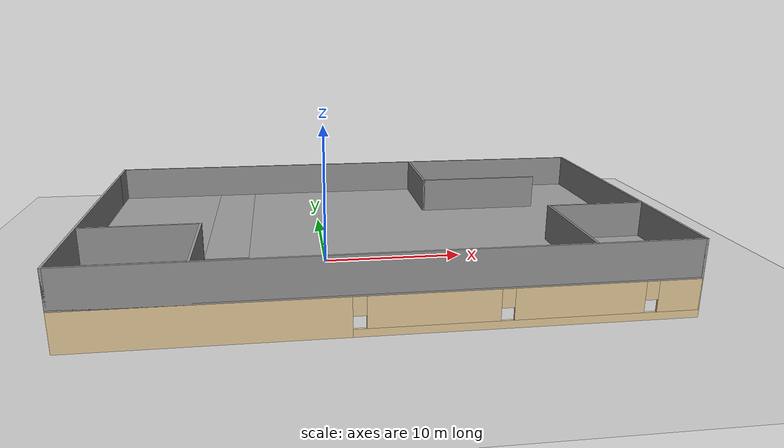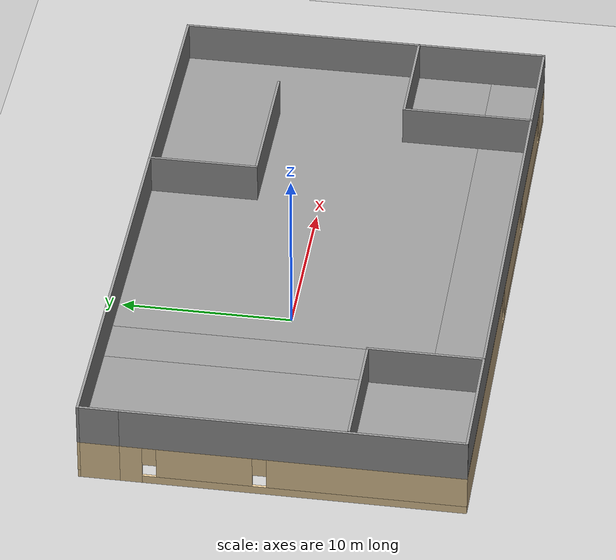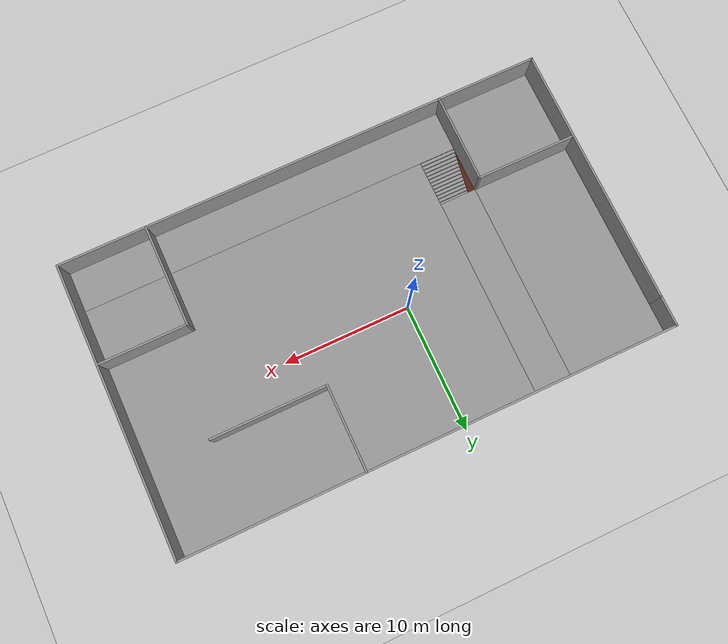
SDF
<sdf version="1.6">
 <world name="default">
  <model name="ground_plane">
   <static>1</static>
   <link name="link">
    <collision name="collision">
     <geometry><plane><normal>0 0 1</normal><size>100 100</size></plane></geometry>
     <surface><friction><ode><mu>100</mu><mu2>50</mu2></ode></friction></surface>
    </collision>
    <visual name="visual">
     <cast_shadows>0</cast_shadows>
     <geometry><plane><normal>0 0 1</normal><size>100 100</size></plane></geometry>
     <material>
      <script><uri>file://media/materials/scripts/gazebo.material</uri><name>Gazebo/Grey</name></script>
     </material>
    </visual>
   </link>
  </model>
  <model name="storage">
   <pose>2.94649 -1.27432 0 0 -0 0</pose>
   <link name="Floor_0">
    <pose>0 0 2.5 0 -0 0</pose>
    <visual name="Floor_0_Visual_0">
     <pose>-14.7944 0 0.05 0 -0 0</pose>
     <geometry><box><size>7.66113 22 0.1</size></box></geometry>
     <material>
      <script><uri>file://media/materials/scripts/gazebo.material</uri><name>Gazebo/Grey</name></script>
      <ambient>1 1 1 1</ambient>
     </material>
    </visual>
    <collision name="Floor_0_Collision_0">
     <geometry><box><size>7.66113 22 0.1</size></box></geometry>
     <pose>-14.7944 0 0.05 0 -0 0</pose>
    </collision>
    <visual name="Floor_0_Visual_1">
     <pose>3.83056 -9.39198 0.05 0 -0 0</pose>
     <geometry><box><size>29.5889 3.21604 0.1</size></box></geometry>
     <material>
      <script><uri>file://media/materials/scripts/gazebo.material</uri><name>Gazebo/Grey</name></script>
      <ambient>1 1 1 1</ambient>
     </material>
    </visual>
    <collision name="Floor_0_Collision_1">
     <geometry><box><size>29.5889 3.21604 0.1</size></box></geometry>
     <pose>3.83056 -9.39198 0.05 0 -0 0</pose>
    </collision>
    <visual name="Floor_0_Visual_2">
     <pose>5.22762 1.60802 0.05 0 -0 0</pose>
     <geometry><box><size>26.7948 18.784 0.1</size></box></geometry>
     <material>
      <script><uri>file://media/materials/scripts/gazebo.material</uri><name>Gazebo/Grey</name></script>
      <ambient>1 1 1 1</ambient>
     </material>
    </visual>
    <collision name="Floor_0_Collision_2">
     <geometry><box><size>26.7948 18.784 0.1</size></box></geometry>
     <pose>5.22762 1.60802 0.05 0 -0 0</pose>
    </collision>
    <visual name="Floor_0_Visual_3">
     <pose>-9.56682 3.35802 0.05 0 -0 0</pose>
     <geometry><box><size>2.79412 15.284 0.1</size></box></geometry>
     <material>
      <script><uri>file://media/materials/scripts/gazebo.material</uri><name>Gazebo/Grey</name></script>
      <ambient>1 1 1 1</ambient>
     </material>
    </visual>
    <collision name="Floor_0_Collision_3">
     <geometry><box><size>2.79412 15.284 0.1</size></box></geometry>
     <pose>-9.56682 3.35802 0.05 0 -0 0</pose>
    </collision>
   </link>
   <link name="Stairs_0">
    <visual name="Stairs_0_Visual_0">
     <pose>-9.56682 -4.40063 0.083333 0 -0 0</pose>
     <geometry><box><size>2.79412 0.233333 0.166667</size></box></geometry>
     <material>
      <script><uri>file://media/materials/scripts/gazebo.material</uri><name>Gazebo/Grey</name></script>
      <ambient>0.419608 0.419608 0.419608 1</ambient>
     </material>
    </visual>
    <collision name="Stairs_0_Collision_0">
     <geometry><box><size>2.79412 0.233333 0.166667</size></box></geometry>
     <pose>-9.56682 -4.40063 0.083333 0 -0 0</pose>
    </collision>
    <visual name="Stairs_0_Visual_1">
     <pose>-9.56682 -4.63396 0.25 0 -0 0</pose>
     <geometry><box><size>2.79412 0.233333 0.166667</size></box></geometry>
     <material>
      <script><uri>file://media/materials/scripts/gazebo.material</uri><name>Gazebo/Grey</name></script>
      <ambient>0.419608 0.419608 0.419608 1</ambient>
     </material>
    </visual>
    <collision name="Stairs_0_Collision_1">
     <geometry><box><size>2.79412 0.233333 0.166667</size></box></geometry>
     <pose>-9.56682 -4.63396 0.25 0 -0 0</pose>
    </collision>
    <visual name="Stairs_0_Visual_2">
     <pose>-9.56682 -4.86729 0.416667 0 -0 0</pose>
     <geometry><box><size>2.79412 0.233333 0.166667</size></box></geometry>
     <material>
      <script><uri>file://media/materials/scripts/gazebo.material</uri><name>Gazebo/Grey</name></script>
      <ambient>0.419608 0.419608 0.419608 1</ambient>
     </material>
    </visual>
    <collision name="Stairs_0_Collision_2">
     <geometry><box><size>2.79412 0.233333 0.166667</size></box></geometry>
     <pose>-9.56682 -4.86729 0.416667 0 -0 0</pose>
    </collision>
    <visual name="Stairs_0_Visual_3">
     <pose>-9.56682 -5.10063 0.583333 0 -0 0</pose>
     <geometry><box><size>2.79412 0.233333 0.166667</size></box></geometry>
     <material>
      <script><uri>file://media/materials/scripts/gazebo.material</uri><name>Gazebo/Grey</name></script>
      <ambient>0.419608 0.419608 0.419608 1</ambient>
     </material>
    </visual>
    <collision name="Stairs_0_Collision_3">
     <geometry><box><size>2.79412 0.233333 0.166667</size></box></geometry>
     <pose>-9.56682 -5.10063 0.583333 0 -0 0</pose>
    </collision>
    <visual name="Stairs_0_Visual_4">
     <pose>-9.56682 -5.33396 0.75 0 -0 0</pose>
     <geometry><box><size>2.79412 0.233333 0.166667</size></box></geometry>
     <material>
      <script><uri>file://media/materials/scripts/gazebo.material</uri><name>Gazebo/Grey</name></script>
      <ambient>0.419608 0.419608 0.419608 1</ambient>
     </material>
    </visual>
    <collision name="Stairs_0_Collision_4">
     <geometry><box><size>2.79412 0.233333 0.166667</size></box></geometry>
     <pose>-9.56682 -5.33396 0.75 0 -0 0</pose>
    </collision>
    <visual name="Stairs_0_Visual_5">
     <pose>-9.56682 -5.56729 0.916667 0 -0 0</pose>
     <geometry><box><size>2.79412 0.233333 0.166667</size></box></geometry>
     <material>
      <script><uri>file://media/materials/scripts/gazebo.material</uri><name>Gazebo/Grey</name></script>
      <ambient>0.419608 0.419608 0.419608 1</ambient>
     </material>
    </visual>
    <collision name="Stairs_0_Collision_5">
     <geometry><box><size>2.79412 0.233333 0.166667</size></box></geometry>
     <pose>-9.56682 -5.56729 0.916667 0 -0 0</pose>
    </collision>
    <visual name="Stairs_0_Visual_6">
     <pose>-9.56682 -5.80063 1.08333 0 -0 0</pose>
     <geometry><box><size>2.79412 0.233333 0.166667</size></box></geometry>
     <material>
      <script><uri>file://media/materials/scripts/gazebo.material</uri><name>Gazebo/Grey</name></script>
      <ambient>0.419608 0.419608 0.419608 1</ambient>
     </material>
    </visual>
    <collision name="Stairs_0_Collision_6">
     <geometry><box><size>2.79412 0.233333 0.166667</size></box></geometry>
     <pose>-9.56682 -5.80063 1.08333 0 -0 0</pose>
    </collision>
    <visual name="Stairs_0_Visual_7">
     <pose>-9.56682 -6.03396 1.25 0 -0 0</pose>
     <geometry><box><size>2.79412 0.233333 0.166667</size></box></geometry>
     <material>
      <script><uri>file://media/materials/scripts/gazebo.material</uri><name>Gazebo/Grey</name></script>
      <ambient>0.419608 0.419608 0.419608 1</ambient>
     </material>
    </visual>
    <collision name="Stairs_0_Collision_7">
     <geometry><box><size>2.79412 0.233333 0.166667</size></box></geometry>
     <pose>-9.56682 -6.03396 1.25 0 -0 0</pose>
    </collision>
    <visual name="Stairs_0_Visual_8">
     <pose>-9.56682 -6.26729 1.41667 0 -0 0</pose>
     <geometry><box><size>2.79412 0.233333 0.166667</size></box></geometry>
     <material>
      <script><uri>file://media/materials/scripts/gazebo.material</uri><name>Gazebo/Grey</name></script>
      <ambient>0.419608 0.419608 0.419608 1</ambient>
     </material>
    </visual>
    <collision name="Stairs_0_Collision_8">
     <geometry><box><size>2.79412 0.233333 0.166667</size></box></geometry>
     <pose>-9.56682 -6.26729 1.41667 0 -0 0</pose>
    </collision>
    <visual name="Stairs_0_Visual_9">
     <pose>-9.56682 -6.50063 1.58333 0 -0 0</pose>
     <geometry><box><size>2.79412 0.233333 0.166667</size></box></geometry>
     <material>
      <script><uri>file://media/materials/scripts/gazebo.material</uri><name>Gazebo/Grey</name></script>
      <ambient>0.419608 0.419608 0.419608 1</ambient>
     </material>
    </visual>
    <collision name="Stairs_0_Collision_9">
     <geometry><box><size>2.79412 0.233333 0.166667</size></box></geometry>
     <pose>-9.56682 -6.50063 1.58333 0 -0 0</pose>
    </collision>
    <visual name="Stairs_0_Visual_10">
     <pose>-9.56682 -6.73396 1.75 0 -0 0</pose>
     <geometry><box><size>2.79412 0.233333 0.166667</size></box></geometry>
     <material>
      <script><uri>file://media/materials/scripts/gazebo.material</uri><name>Gazebo/Grey</name></script>
      <ambient>0.419608 0.419608 0.419608 1</ambient>
     </material>
    </visual>
    <collision name="Stairs_0_Collision_10">
     <geometry><box><size>2.79412 0.233333 0.166667</size></box></geometry>
     <pose>-9.56682 -6.73396 1.75 0 -0 0</pose>
    </collision>
    <visual name="Stairs_0_Visual_11">
     <pose>-9.56682 -6.9673 1.91667 0 -0 0</pose>
     <geometry><box><size>2.79412 0.233333 0.166667</size></box></geometry>
     <material>
      <script><uri>file://media/materials/scripts/gazebo.material</uri><name>Gazebo/Grey</name></script>
      <ambient>0.419608 0.419608 0.419608 1</ambient>
     </material>
    </visual>
    <collision name="Stairs_0_Collision_11">
     <geometry><box><size>2.79412 0.233333 0.166667</size></box></geometry>
     <pose>-9.56682 -6.9673 1.91667 0 -0 0</pose>
    </collision>
    <visual name="Stairs_0_Visual_12">
     <pose>-9.56682 -7.20063 2.08333 0 -0 0</pose>
     <geometry><box><size>2.79412 0.233333 0.166667</size></box></geometry>
     <material>
      <script><uri>file://media/materials/scripts/gazebo.material</uri><name>Gazebo/Grey</name></script>
      <ambient>0.419608 0.419608 0.419608 1</ambient>
     </material>
    </visual>
    <collision name="Stairs_0_Collision_12">
     <geometry><box><size>2.79412 0.233333 0.166667</size></box></geometry>
     <pose>-9.56682 -7.20063 2.08333 0 -0 0</pose>
    </collision>
    <visual name="Stairs_0_Visual_13">
     <pose>-9.56682 -7.43396 2.25 0 -0 0</pose>
     <geometry><box><size>2.79412 0.233333 0.166667</size></box></geometry>
     <material>
      <script><uri>file://media/materials/scripts/gazebo.material</uri><name>Gazebo/Grey</name></script>
      <ambient>0.419608 0.419608 0.419608 1</ambient>
     </material>
    </visual>
    <collision name="Stairs_0_Collision_13">
     <geometry><box><size>2.79412 0.233333 0.166667</size></box></geometry>
     <pose>-9.56682 -7.43396 2.25 0 -0 0</pose>
    </collision>
    <visual name="Stairs_0_Visual_14">
     <pose>-9.56682 -7.6673 2.41667 0 -0 0</pose>
     <geometry><box><size>2.79412 0.233333 0.166667</size></box></geometry>
     <material>
      <script><uri>file://media/materials/scripts/gazebo.material</uri><name>Gazebo/Grey</name></script>
      <ambient>0.419608 0.419608 0.419608 1</ambient>
     </material>
    </visual>
    <collision name="Stairs_0_Collision_14">
     <geometry><box><size>2.79412 0.233333 0.166667</size></box></geometry>
     <pose>-9.56682 -7.6673 2.41667 0 -0 0</pose>
    </collision>
   </link>
   <link name="Wall_1">
    <pose>-18.55 -1.125 0 0 0 -1.5708</pose>
    <visual name="Wall_1_Visual_0">
     <pose>-9.16747 0 1.25 0 -0 0</pose>
     <geometry><box><size>1.41505 0.15 2.5</size></box></geometry>
     <material>
      <script><uri>file://media/materials/scripts/gazebo.material</uri><name>Gazebo/Grey</name></script>
      <ambient>0.921569 0.807843 0.615686 1</ambient>
     </material>
    </visual>
    <collision name="Wall_1_Collision_0">
     <geometry><box><size>1.41505 0.15 2.5</size></box></geometry>
     <pose>-9.16747 0 1.25 0 -0 0</pose>
    </collision>
    <visual name="Wall_1_Visual_1">
     <pose>0.707526 0 0.25 0 -0 0</pose>
     <geometry><box><size>18.3349 0.15 0.5</size></box></geometry>
     <material>
      <script><uri>file://media/materials/scripts/gazebo.material</uri><name>Gazebo/Grey</name></script>
      <ambient>0.921569 0.807843 0.615686 1</ambient>
     </material>
    </visual>
    <collision name="Wall_1_Collision_1">
     <geometry><box><size>18.3349 0.15 0.5</size></box></geometry>
     <pose>0.707526 0 0.25 0 -0 0</pose>
    </collision>
    <visual name="Wall_1_Visual_2">
     <pose>-4.94285 0 1.5 0 -0 0</pose>
     <geometry><box><size>5.43421 0.15 2</size></box></geometry>
     <material>
      <script><uri>file://media/materials/scripts/gazebo.material</uri><name>Gazebo/Grey</name></script>
      <ambient>0.921569 0.807843 0.615686 1</ambient>
     </material>
    </visual>
    <collision name="Wall_1_Collision_2">
     <geometry><box><size>5.43421 0.15 2</size></box></geometry>
     <pose>-4.94285 0 1.5 0 -0 0</pose>
    </collision>
    <visual name="Wall_1_Visual_3">
     <pose>4.22463 0 1.5 0 -0 0</pose>
     <geometry><box><size>11.3007 0.15 2</size></box></geometry>
     <material>
      <script><uri>file://media/materials/scripts/gazebo.material</uri><name>Gazebo/Grey</name></script>
      <ambient>0.921569 0.807843 0.615686 1</ambient>
     </material>
    </visual>
    <collision name="Wall_1_Collision_3">
     <geometry><box><size>11.3007 0.15 2</size></box></geometry>
     <pose>4.22463 0 1.5 0 -0 0</pose>
    </collision>
    <visual name="Wall_1_Visual_4">
     <pose>-8.05995 0 1.9 0 -0 0</pose>
     <geometry><box><size>0.8 0.15 1.2</size></box></geometry>
     <material>
      <script><uri>file://media/materials/scripts/gazebo.material</uri><name>Gazebo/Grey</name></script>
      <ambient>0.921569 0.807843 0.615686 1</ambient>
     </material>
    </visual>
    <collision name="Wall_1_Collision_4">
     <geometry><box><size>0.8 0.15 1.2</size></box></geometry>
     <pose>-8.05995 0 1.9 0 -0 0</pose>
    </collision>
    <visual name="Wall_1_Visual_5">
     <pose>-1.82574 0 1.9 0 -0 0</pose>
     <geometry><box><size>0.8 0.15 1.2</size></box></geometry>
     <material>
      <script><uri>file://media/materials/scripts/gazebo.material</uri><name>Gazebo/Grey</name></script>
      <ambient>0.921569 0.807843 0.615686 1</ambient>
     </material>
    </visual>
    <collision name="Wall_1_Collision_5">
     <geometry><box><size>0.8 0.15 1.2</size></box></geometry>
     <pose>-1.82574 0 1.9 0 -0 0</pose>
    </collision>
   </link>
   <link name="Wall_10">
    <pose>-11.0196 -7.61598 0 0 -0 1.5708</pose>
    <visual name="Wall_10_Visual_0">
     <pose>-2.69712 0 1.25 0 -0 0</pose>
     <geometry><box><size>1.35576 0.15 2.5</size></box></geometry>
     <material>
      <script><uri>file://media/materials/scripts/gazebo.material</uri><name>Gazebo/Bricks</name></script>
      <ambient>1 1 1 1</ambient>
     </material>
    </visual>
    <collision name="Wall_10_Collision_0">
     <geometry><box><size>1.35576 0.15 2.5</size></box></geometry>
     <pose>-2.69712 0 1.25 0 -0 0</pose>
    </collision>
    <visual name="Wall_10_Visual_1">
     <pose>0.677878 0 0.25 0 -0 0</pose>
     <geometry><box><size>5.39424 0.15 0.5</size></box></geometry>
     <material>
      <script><uri>file://media/materials/scripts/gazebo.material</uri><name>Gazebo/Bricks</name></script>
      <ambient>1 1 1 1</ambient>
     </material>
    </visual>
    <collision name="Wall_10_Collision_1">
     <geometry><box><size>5.39424 0.15 0.5</size></box></geometry>
     <pose>0.677878 0 0.25 0 -0 0</pose>
    </collision>
    <visual name="Wall_10_Visual_2">
     <pose>1.07788 0 1.5 0 -0 0</pose>
     <geometry><box><size>4.59424 0.15 2</size></box></geometry>
     <material>
      <script><uri>file://media/materials/scripts/gazebo.material</uri><name>Gazebo/Bricks</name></script>
      <ambient>1 1 1 1</ambient>
     </material>
    </visual>
    <collision name="Wall_10_Collision_2">
     <geometry><box><size>4.59424 0.15 2</size></box></geometry>
     <pose>1.07788 0 1.5 0 -0 0</pose>
    </collision>
    <visual name="Wall_10_Visual_3">
     <pose>-1.61925 0 1.9 0 -0 0</pose>
     <geometry><box><size>0.8 0.15 1.2</size></box></geometry>
     <material>
      <script><uri>file://media/materials/scripts/gazebo.material</uri><name>Gazebo/Bricks</name></script>
      <ambient>1 1 1 1</ambient>
     </material>
    </visual>
    <collision name="Wall_10_Collision_3">
     <geometry><box><size>0.8 0.15 1.2</size></box></geometry>
     <pose>-1.61925 0 1.9 0 -0 0</pose>
    </collision>
   </link>
   <link name="Wall_11">
    <pose>-14.6946 -4.31598 0 0 -0 3.14159</pose>
    <visual name="Wall_11_Visual_0">
     <pose>-2.69663 0 1.25 0 -0 0</pose>
     <geometry><box><size>2.10674 0.15 2.5</size></box></geometry>
     <material>
      <script><uri>file://media/materials/scripts/gazebo.material</uri><name>Gazebo/Bricks</name></script>
      <ambient>1 1 1 1</ambient>
     </material>
    </visual>
    <collision name="Wall_11_Collision_0">
     <geometry><box><size>2.10674 0.15 2.5</size></box></geometry>
     <pose>-2.69663 0 1.25 0 -0 0</pose>
    </collision>
    <visual name="Wall_11_Visual_1">
     <pose>0.21527 0 1.25 0 -0 0</pose>
     <geometry><box><size>1.91706 0.15 2.5</size></box></geometry>
     <material>
      <script><uri>file://media/materials/scripts/gazebo.material</uri><name>Gazebo/Bricks</name></script>
      <ambient>1 1 1 1</ambient>
     </material>
    </visual>
    <collision name="Wall_11_Collision_1">
     <geometry><box><size>1.91706 0.15 2.5</size></box></geometry>
     <pose>0.21527 0 1.25 0 -0 0</pose>
    </collision>
    <visual name="Wall_11_Visual_2">
     <pose>2.4619 0 0.25 0 -0 0</pose>
     <geometry><box><size>2.5762 0.15 0.5</size></box></geometry>
     <material>
      <script><uri>file://media/materials/scripts/gazebo.material</uri><name>Gazebo/Bricks</name></script>
      <ambient>1 1 1 1</ambient>
     </material>
    </visual>
    <collision name="Wall_11_Collision_2">
     <geometry><box><size>2.5762 0.15 0.5</size></box></geometry>
     <pose>2.4619 0 0.25 0 -0 0</pose>
    </collision>
    <visual name="Wall_11_Visual_3">
     <pose>2.8619 0 1.5 0 -0 0</pose>
     <geometry><box><size>1.7762 0.15 2</size></box></geometry>
     <material>
      <script><uri>file://media/materials/scripts/gazebo.material</uri><name>Gazebo/Bricks</name></script>
      <ambient>1 1 1 1</ambient>
     </material>
    </visual>
    <collision name="Wall_11_Collision_3">
     <geometry><box><size>1.7762 0.15 2</size></box></geometry>
     <pose>2.8619 0 1.5 0 -0 0</pose>
    </collision>
    <visual name="Wall_11_Visual_4">
     <pose>1.5738 0 1.9 0 -0 0</pose>
     <geometry><box><size>0.8 0.15 1.2</size></box></geometry>
     <material>
      <script><uri>file://media/materials/scripts/gazebo.material</uri><name>Gazebo/Bricks</name></script>
      <ambient>1 1 1 1</ambient>
     </material>
    </visual>
    <collision name="Wall_11_Collision_4">
     <geometry><box><size>0.8 0.15 1.2</size></box></geometry>
     <pose>1.5738 0 1.9 0 -0 0</pose>
    </collision>
    <visual name="Wall_11_Visual_5">
     <pose>-1.19326 0 2.25 0 -0 0</pose>
     <geometry><box><size>0.9 0.15 0.5</size></box></geometry>
     <material>
      <script><uri>file://media/materials/scripts/gazebo.material</uri><name>Gazebo/Bricks</name></script>
      <ambient>1 1 1 1</ambient>
     </material>
    </visual>
    <collision name="Wall_11_Collision_5">
     <geometry><box><size>0.9 0.15 0.5</size></box></geometry>
     <pose>-1.19326 0 2.25 0 -0 0</pose>
    </collision>
   </link>
   <link name="Wall_13">
    <pose>11.9007 -7.08371 0 0 -0 1.5708</pose>
    <visual name="Wall_13_Visual_0">
     <pose>-2.86147 0 1.25 0 -0 0</pose>
     <geometry><box><size>2.02706 0.15 2.5</size></box></geometry>
     <material>
      <script><uri>file://media/materials/scripts/gazebo.material</uri><name>Gazebo/Bricks</name></script>
      <ambient>1 1 1 1</ambient>
     </material>
    </visual>
    <collision name="Wall_13_Collision_0">
     <geometry><box><size>2.02706 0.15 2.5</size></box></geometry>
     <pose>-2.86147 0 1.25 0 -0 0</pose>
    </collision>
    <visual name="Wall_13_Visual_1">
     <pose>2.79805 0 1.25 0 -0 0</pose>
     <geometry><box><size>2.15389 0.15 2.5</size></box></geometry>
     <material>
      <script><uri>file://media/materials/scripts/gazebo.material</uri><name>Gazebo/Bricks</name></script>
      <ambient>1 1 1 1</ambient>
     </material>
    </visual>
    <collision name="Wall_13_Collision_1">
     <geometry><box><size>2.15389 0.15 2.5</size></box></geometry>
     <pose>2.79805 0 1.25 0 -0 0</pose>
    </collision>
    <visual name="Wall_13_Visual_2">
     <pose>-0.513417 0 0.25 0 -0 0</pose>
     <geometry><box><size>2.66905 0.15 0.5</size></box></geometry>
     <material>
      <script><uri>file://media/materials/scripts/gazebo.material</uri><name>Gazebo/Bricks</name></script>
      <ambient>1 1 1 1</ambient>
     </material>
    </visual>
    <collision name="Wall_13_Collision_2">
     <geometry><box><size>2.66905 0.15 0.5</size></box></geometry>
     <pose>-0.513417 0 0.25 0 -0 0</pose>
    </collision>
    <visual name="Wall_13_Visual_3">
     <pose>-0.113417 0 1.5 0 -0 0</pose>
     <geometry><box><size>1.86905 0.15 2</size></box></geometry>
     <material>
      <script><uri>file://media/materials/scripts/gazebo.material</uri><name>Gazebo/Bricks</name></script>
      <ambient>1 1 1 1</ambient>
     </material>
    </visual>
    <collision name="Wall_13_Collision_3">
     <geometry><box><size>1.86905 0.15 2</size></box></geometry>
     <pose>-0.113417 0 1.5 0 -0 0</pose>
    </collision>
    <visual name="Wall_13_Visual_4">
     <pose>-1.44794 0 1.9 0 -0 0</pose>
     <geometry><box><size>0.8 0.15 1.2</size></box></geometry>
     <material>
      <script><uri>file://media/materials/scripts/gazebo.material</uri><name>Gazebo/Bricks</name></script>
      <ambient>1 1 1 1</ambient>
     </material>
    </visual>
    <collision name="Wall_13_Collision_4">
     <geometry><box><size>0.8 0.15 1.2</size></box></geometry>
     <pose>-1.44794 0 1.9 0 -0 0</pose>
    </collision>
    <visual name="Wall_13_Visual_5">
     <pose>1.27111 0 2.25 0 -0 0</pose>
     <geometry><box><size>0.9 0.15 0.5</size></box></geometry>
     <material>
      <script><uri>file://media/materials/scripts/gazebo.material</uri><name>Gazebo/Bricks</name></script>
      <ambient>1 1 1 1</ambient>
     </material>
    </visual>
    <collision name="Wall_13_Collision_5">
     <geometry><box><size>0.9 0.15 0.5</size></box></geometry>
     <pose>1.27111 0 2.25 0 -0 0</pose>
    </collision>
   </link>
   <link name="Wall_14">
    <pose>15.2007 -3.28371 0 0 -0 0</pose>
    <visual name="Wall_14_Visual_0">
     <pose>-1.68608 0 1.25 0 -0 0</pose>
     <geometry><box><size>3.37785 0.15 2.5</size></box></geometry>
     <material>
      <script><uri>file://media/materials/scripts/gazebo.material</uri><name>Gazebo/Bricks</name></script>
      <ambient>1 1 1 1</ambient>
     </material>
    </visual>
    <collision name="Wall_14_Collision_0">
     <geometry><box><size>3.37785 0.15 2.5</size></box></geometry>
     <pose>-1.68608 0 1.25 0 -0 0</pose>
    </collision>
    <visual name="Wall_14_Visual_1">
     <pose>1.68892 0 0.25 0 -0 0</pose>
     <geometry><box><size>3.37215 0.15 0.5</size></box></geometry>
     <material>
      <script><uri>file://media/materials/scripts/gazebo.material</uri><name>Gazebo/Bricks</name></script>
      <ambient>1 1 1 1</ambient>
     </material>
    </visual>
    <collision name="Wall_14_Collision_1">
     <geometry><box><size>3.37215 0.15 0.5</size></box></geometry>
     <pose>1.68892 0 0.25 0 -0 0</pose>
    </collision>
    <visual name="Wall_14_Visual_2">
     <pose>2.08892 0 1.5 0 -0 0</pose>
     <geometry><box><size>2.57215 0.15 2</size></box></geometry>
     <material>
      <script><uri>file://media/materials/scripts/gazebo.material</uri><name>Gazebo/Bricks</name></script>
      <ambient>1 1 1 1</ambient>
     </material>
    </visual>
    <collision name="Wall_14_Collision_2">
     <geometry><box><size>2.57215 0.15 2</size></box></geometry>
     <pose>2.08892 0 1.5 0 -0 0</pose>
    </collision>
    <visual name="Wall_14_Visual_3">
     <pose>0.402845 0 1.9 0 -0 0</pose>
     <geometry><box><size>0.8 0.15 1.2</size></box></geometry>
     <material>
      <script><uri>file://media/materials/scripts/gazebo.material</uri><name>Gazebo/Bricks</name></script>
      <ambient>1 1 1 1</ambient>
     </material>
    </visual>
    <collision name="Wall_14_Collision_3">
     <geometry><box><size>0.8 0.15 1.2</size></box></geometry>
     <pose>0.402845 0 1.9 0 -0 0</pose>
    </collision>
   </link>
   <link name="Wall_16">
    <collision name="Wall_16_Collision">
     <geometry><box><size>19.75 0.15 2.5</size></box></geometry>
     <pose>0 0 1.25 0 -0 0</pose>
    </collision>
    <visual name="Wall_16_Visual">
     <pose>0 0 1.25 0 -0 0</pose>
     <geometry><box><size>19.75 0.15 2.5</size></box></geometry>
     <material>
      <script><uri>file://media/materials/scripts/gazebo.material</uri><name>Gazebo/Grey</name></script>
      <ambient>1 1 1 1</ambient>
     </material>
    </visual>
    <pose>-18.55 -1.125 2.5 0 0 -1.5708</pose>
   </link>
   <link name="Wall_17">
    <collision name="Wall_17_Collision">
     <geometry><box><size>37.25 0.15 2.5</size></box></geometry>
     <pose>0 0 1.25 0 -0 0</pose>
    </collision>
    <visual name="Wall_17_Visual">
     <pose>0 0 1.25 0 -0 0</pose>
     <geometry><box><size>37.25 0.15 2.5</size></box></geometry>
     <material>
      <script><uri>file://media/materials/scripts/gazebo.material</uri><name>Gazebo/Grey</name></script>
      <ambient>1 1 1 1</ambient>
     </material>
    </visual>
    <pose>0 -10.925 2.5 0 -0 0</pose>
   </link>
   <link name="Wall_18">
    <collision name="Wall_18_Collision">
     <geometry><box><size>22 0.15 2.5</size></box></geometry>
     <pose>0 0 1.25 0 -0 0</pose>
    </collision>
    <visual name="Wall_18_Visual">
     <pose>0 0 1.25 0 -0 0</pose>
     <geometry><box><size>22 0.15 2.5</size></box></geometry>
     <material>
      <script><uri>file://media/materials/scripts/gazebo.material</uri><name>Gazebo/Grey</name></script>
      <ambient>1 1 1 1</ambient>
     </material>
    </visual>
    <pose>18.55 0 2.5 0 -0 1.5708</pose>
   </link>
   <link name="Wall_19">
    <collision name="Wall_19_Collision">
     <geometry><box><size>37.25 0.15 2.5</size></box></geometry>
     <pose>0 0 1.25 0 -0 0</pose>
    </collision>
    <visual name="Wall_19_Visual">
     <pose>0 0 1.25 0 -0 0</pose>
     <geometry><box><size>37.25 0.15 2.5</size></box></geometry>
     <material>
      <script><uri>file://media/materials/scripts/gazebo.material</uri><name>Gazebo/Grey</name></script>
      <ambient>1 1 1 1</ambient>
     </material>
    </visual>
    <pose>0 10.925 2.5 0 -0 3.14159</pose>
   </link>
   <link name="Wall_2">
    <pose>0 -10.925 0 0 -0 0</pose>
    <visual name="Wall_2_Visual_0">
     <pose>-10.4329 0 1.25 0 -0 0</pose>
     <geometry><box><size>16.3841 0.15 2.5</size></box></geometry>
     <material>
      <script><uri>file://media/materials/scripts/gazebo.material</uri><name>Gazebo/Grey</name></script>
      <ambient>0.921569 0.807843 0.615686 1</ambient>
     </material>
    </visual>
    <collision name="Wall_2_Collision_0">
     <geometry><box><size>16.3841 0.15 2.5</size></box></geometry>
     <pose>-10.4329 0 1.25 0 -0 0</pose>
    </collision>
    <visual name="Wall_2_Visual_1">
     <pose>8.19207 0 0.25 0 -0 0</pose>
     <geometry><box><size>20.8659 0.15 0.5</size></box></geometry>
     <material>
      <script><uri>file://media/materials/scripts/gazebo.material</uri><name>Gazebo/Grey</name></script>
      <ambient>0.921569 0.807843 0.615686 1</ambient>
     </material>
    </visual>
    <collision name="Wall_2_Collision_1">
     <geometry><box><size>20.8659 0.15 0.5</size></box></geometry>
     <pose>8.19207 0 0.25 0 -0 0</pose>
    </collision>
    <visual name="Wall_2_Visual_2">
     <pose>2.46838 0 1.5 0 -0 0</pose>
     <geometry><box><size>7.81846 0.15 2</size></box></geometry>
     <material>
      <script><uri>file://media/materials/scripts/gazebo.material</uri><name>Gazebo/Grey</name></script>
      <ambient>0.921569 0.807843 0.615686 1</ambient>
     </material>
    </visual>
    <collision name="Wall_2_Collision_2">
     <geometry><box><size>7.81846 0.15 2</size></box></geometry>
     <pose>2.46838 0 1.5 0 -0 0</pose>
    </collision>
    <visual name="Wall_2_Visual_3">
     <pose>11.1533 0 1.5 0 -0 0</pose>
     <geometry><box><size>7.95147 0.15 2</size></box></geometry>
     <material>
      <script><uri>file://media/materials/scripts/gazebo.material</uri><name>Gazebo/Grey</name></script>
      <ambient>0.921569 0.807843 0.615686 1</ambient>
     </material>
    </visual>
    <collision name="Wall_2_Collision_3">
     <geometry><box><size>7.95147 0.15 2</size></box></geometry>
     <pose>11.1533 0 1.5 0 -0 0</pose>
    </collision>
    <visual name="Wall_2_Visual_4">
     <pose>17.277 0 1.5 0 -0 0</pose>
     <geometry><box><size>2.69592 0.15 2</size></box></geometry>
     <material>
      <script><uri>file://media/materials/scripts/gazebo.material</uri><name>Gazebo/Grey</name></script>
      <ambient>0.921569 0.807843 0.615686 1</ambient>
     </material>
    </visual>
    <collision name="Wall_2_Collision_4">
     <geometry><box><size>2.69592 0.15 2</size></box></geometry>
     <pose>17.277 0 1.5 0 -0 0</pose>
    </collision>
    <visual name="Wall_2_Visual_5">
     <pose>-1.84085 0 1.9 0 -0 0</pose>
     <geometry><box><size>0.8 0.15 1.2</size></box></geometry>
     <material>
      <script><uri>file://media/materials/scripts/gazebo.material</uri><name>Gazebo/Grey</name></script>
      <ambient>0.921569 0.807843 0.615686 1</ambient>
     </material>
    </visual>
    <collision name="Wall_2_Collision_5">
     <geometry><box><size>0.8 0.15 1.2</size></box></geometry>
     <pose>-1.84085 0 1.9 0 -0 0</pose>
    </collision>
    <visual name="Wall_2_Visual_6">
     <pose>6.77761 0 1.9 0 -0 0</pose>
     <geometry><box><size>0.8 0.15 1.2</size></box></geometry>
     <material>
      <script><uri>file://media/materials/scripts/gazebo.material</uri><name>Gazebo/Grey</name></script>
      <ambient>0.921569 0.807843 0.615686 1</ambient>
     </material>
    </visual>
    <collision name="Wall_2_Collision_6">
     <geometry><box><size>0.8 0.15 1.2</size></box></geometry>
     <pose>6.77761 0 1.9 0 -0 0</pose>
    </collision>
    <visual name="Wall_2_Visual_7">
     <pose>15.5291 0 1.9 0 -0 0</pose>
     <geometry><box><size>0.8 0.15 1.2</size></box></geometry>
     <material>
      <script><uri>file://media/materials/scripts/gazebo.material</uri><name>Gazebo/Grey</name></script>
      <ambient>0.921569 0.807843 0.615686 1</ambient>
     </material>
    </visual>
    <collision name="Wall_2_Collision_7">
     <geometry><box><size>0.8 0.15 1.2</size></box></geometry>
     <pose>15.5291 0 1.9 0 -0 0</pose>
    </collision>
   </link>
   <link name="Wall_20">
    <collision name="Wall_20_Collision">
     <geometry><box><size>2.4 0.15 2.5</size></box></geometry>
     <pose>0 0 1.25 0 -0 0</pose>
    </collision>
    <visual name="Wall_20_Visual">
     <pose>0 0 1.25 0 -0 0</pose>
     <geometry><box><size>2.4 0.15 2.5</size></box></geometry>
     <material>
      <script><uri>file://media/materials/scripts/gazebo.material</uri><name>Gazebo/Grey</name></script>
      <ambient>1 1 1 1</ambient>
     </material>
    </visual>
    <pose>-18.55 9.8 2.5 0 0 -1.5708</pose>
   </link>
   <link name="Wall_21">
    <collision name="Wall_21_Collision">
     <geometry><box><size>6.5 0.15 2.5</size></box></geometry>
     <pose>0 0 1.25 0 -0 0</pose>
    </collision>
    <visual name="Wall_21_Visual">
     <pose>0 0 1.25 0 -0 0</pose>
     <geometry><box><size>6.5 0.15 2.5</size></box></geometry>
     <material>
      <script><uri>file://media/materials/scripts/gazebo.material</uri><name>Gazebo/Grey</name></script>
      <ambient>1 1 1 1</ambient>
     </material>
    </visual>
    <pose>4.92417 7.73804 2.5 0 0 -1.5708</pose>
   </link>
   <link name="Wall_22">
    <collision name="Wall_22_Collision">
     <geometry><box><size>8.75 0.15 2.5</size></box></geometry>
     <pose>0 0 1.25 0 -0 0</pose>
    </collision>
    <visual name="Wall_22_Visual">
     <pose>0 0 1.25 0 -0 0</pose>
     <geometry><box><size>8.75 0.15 2.5</size></box></geometry>
     <material>
      <script><uri>file://media/materials/scripts/gazebo.material</uri><name>Gazebo/Grey</name></script>
      <ambient>1 1 1 1</ambient>
     </material>
    </visual>
    <pose>9.22417 4.56304 2.5 0 -0 0</pose>
   </link>
   <link name="Wall_23">
    <collision name="Wall_23_Collision">
     <geometry><box><size>6.75 0.15 2.5</size></box></geometry>
     <pose>0 0 1.25 0 -0 0</pose>
    </collision>
    <visual name="Wall_23_Visual">
     <pose>0 0 1.25 0 -0 0</pose>
     <geometry><box><size>6.75 0.15 2.5</size></box></geometry>
     <material>
      <script><uri>file://media/materials/scripts/gazebo.material</uri><name>Gazebo/Grey</name></script>
      <ambient>1 1 1 1</ambient>
     </material>
    </visual>
    <pose>-11.0196 -7.61598 2.5 0 -0 1.5708</pose>
   </link>
   <link name="Wall_24">
    <collision name="Wall_24_Collision">
     <geometry><box><size>7.5 0.15 2.5</size></box></geometry>
     <pose>0 0 1.25 0 -0 0</pose>
    </collision>
    <visual name="Wall_24_Visual">
     <pose>0 0 1.25 0 -0 0</pose>
     <geometry><box><size>7.5 0.15 2.5</size></box></geometry>
     <material>
      <script><uri>file://media/materials/scripts/gazebo.material</uri><name>Gazebo/Grey</name></script>
      <ambient>1 1 1 1</ambient>
     </material>
    </visual>
    <pose>-14.6946 -4.31598 2.5 0 -0 3.14159</pose>
   </link>
   <link name="Wall_25">
    <collision name="Wall_25_Collision">
     <geometry><box><size>7.75 0.15 2.5</size></box></geometry>
     <pose>0 0 1.25 0 -0 0</pose>
    </collision>
    <visual name="Wall_25_Visual">
     <pose>0 0 1.25 0 -0 0</pose>
     <geometry><box><size>7.75 0.15 2.5</size></box></geometry>
     <material>
      <script><uri>file://media/materials/scripts/gazebo.material</uri><name>Gazebo/Grey</name></script>
      <ambient>1 1 1 1</ambient>
     </material>
    </visual>
    <pose>11.9007 -7.08371 2.5 0 -0 1.5708</pose>
   </link>
   <link name="Wall_26">
    <collision name="Wall_26_Collision">
     <geometry><box><size>6.75 0.15 2.5</size></box></geometry>
     <pose>0 0 1.25 0 -0 0</pose>
    </collision>
    <visual name="Wall_26_Visual">
     <pose>0 0 1.25 0 -0 0</pose>
     <geometry><box><size>6.75 0.15 2.5</size></box></geometry>
     <material>
      <script><uri>file://media/materials/scripts/gazebo.material</uri><name>Gazebo/Grey</name></script>
      <ambient>1 1 1 1</ambient>
     </material>
    </visual>
    <pose>15.2007 -3.28371 2.5 0 -0 0</pose>
   </link>
   <link name="Wall_3">
    <pose>18.55 0 0 0 -0 1.5708</pose>
    <visual name="Wall_3_Visual_0">
     <pose>-9.23944 0 1.25 0 -0 0</pose>
     <geometry><box><size>3.52111 0.15 2.5</size></box></geometry>
     <material>
      <script><uri>file://media/materials/scripts/gazebo.material</uri><name>Gazebo/Grey</name></script>
      <ambient>0.921569 0.807843 0.615686 1</ambient>
     </material>
    </visual>
    <collision name="Wall_3_Collision_0">
     <geometry><box><size>3.52111 0.15 2.5</size></box></geometry>
     <pose>-9.23944 0 1.25 0 -0 0</pose>
    </collision>
    <visual name="Wall_3_Visual_1">
     <pose>1.76056 0 0.25 0 -0 0</pose>
     <geometry><box><size>18.4789 0.15 0.5</size></box></geometry>
     <material>
      <script><uri>file://media/materials/scripts/gazebo.material</uri><name>Gazebo/Grey</name></script>
      <ambient>0.921569 0.807843 0.615686 1</ambient>
     </material>
    </visual>
    <collision name="Wall_3_Collision_1">
     <geometry><box><size>18.4789 0.15 0.5</size></box></geometry>
     <pose>1.76056 0 0.25 0 -0 0</pose>
    </collision>
    <visual name="Wall_3_Visual_2">
     <pose>0.323485 0 1.5 0 -0 0</pose>
     <geometry><box><size>14.0047 0.15 2</size></box></geometry>
     <material>
      <script><uri>file://media/materials/scripts/gazebo.material</uri><name>Gazebo/Grey</name></script>
      <ambient>0.921569 0.807843 0.615686 1</ambient>
     </material>
    </visual>
    <collision name="Wall_3_Collision_2">
     <geometry><box><size>14.0047 0.15 2</size></box></geometry>
     <pose>0.323485 0 1.5 0 -0 0</pose>
    </collision>
    <visual name="Wall_3_Visual_3">
     <pose>9.56293 0 1.5 0 -0 0</pose>
     <geometry><box><size>2.87414 0.15 2</size></box></geometry>
     <material>
      <script><uri>file://media/materials/scripts/gazebo.material</uri><name>Gazebo/Grey</name></script>
      <ambient>0.921569 0.807843 0.615686 1</ambient>
     </material>
    </visual>
    <collision name="Wall_3_Collision_3">
     <geometry><box><size>2.87414 0.15 2</size></box></geometry>
     <pose>9.56293 0 1.5 0 -0 0</pose>
    </collision>
    <visual name="Wall_3_Visual_4">
     <pose>-7.07888 0 1.9 0 -0 0</pose>
     <geometry><box><size>0.8 0.15 1.2</size></box></geometry>
     <material>
      <script><uri>file://media/materials/scripts/gazebo.material</uri><name>Gazebo/Grey</name></script>
      <ambient>0.921569 0.807843 0.615686 1</ambient>
     </material>
    </visual>
    <collision name="Wall_3_Collision_4">
     <geometry><box><size>0.8 0.15 1.2</size></box></geometry>
     <pose>-7.07888 0 1.9 0 -0 0</pose>
    </collision>
    <visual name="Wall_3_Visual_5">
     <pose>7.72586 0 1.9 0 -0 0</pose>
     <geometry><box><size>0.8 0.15 1.2</size></box></geometry>
     <material>
      <script><uri>file://media/materials/scripts/gazebo.material</uri><name>Gazebo/Grey</name></script>
      <ambient>0.921569 0.807843 0.615686 1</ambient>
     </material>
    </visual>
    <collision name="Wall_3_Collision_5">
     <geometry><box><size>0.8 0.15 1.2</size></box></geometry>
     <pose>7.72586 0 1.9 0 -0 0</pose>
    </collision>
   </link>
   <link name="Wall_4">
    <pose>0 10.925 0 0 -0 3.14159</pose>
    <visual name="Wall_4_Visual_0">
     <pose>-15.5094 0 1.25 0 -0 0</pose>
     <geometry><box><size>6.23121 0.15 2.5</size></box></geometry>
     <material>
      <script><uri>file://media/materials/scripts/gazebo.material</uri><name>Gazebo/Grey</name></script>
      <ambient>0.921569 0.807843 0.615686 1</ambient>
     </material>
    </visual>
    <collision name="Wall_4_Collision_0">
     <geometry><box><size>6.23121 0.15 2.5</size></box></geometry>
     <pose>-15.5094 0 1.25 0 -0 0</pose>
    </collision>
    <visual name="Wall_4_Visual_1">
     <pose>3.1156 0 0.25 0 -0 0</pose>
     <geometry><box><size>31.0188 0.15 0.5</size></box></geometry>
     <material>
      <script><uri>file://media/materials/scripts/gazebo.material</uri><name>Gazebo/Grey</name></script>
      <ambient>0.921569 0.807843 0.615686 1</ambient>
     </material>
    </visual>
    <collision name="Wall_4_Collision_1">
     <geometry><box><size>31.0188 0.15 0.5</size></box></geometry>
     <pose>3.1156 0 0.25 0 -0 0</pose>
    </collision>
    <visual name="Wall_4_Visual_2">
     <pose>-6.27135 0 1.5 0 -0 0</pose>
     <geometry><box><size>10.6449 0.15 2</size></box></geometry>
     <material>
      <script><uri>file://media/materials/scripts/gazebo.material</uri><name>Gazebo/Grey</name></script>
      <ambient>0.921569 0.807843 0.615686 1</ambient>
     </material>
    </visual>
    <collision name="Wall_4_Collision_2">
     <geometry><box><size>10.6449 0.15 2</size></box></geometry>
     <pose>-6.27135 0 1.5 0 -0 0</pose>
    </collision>
    <visual name="Wall_4_Visual_3">
     <pose>3.03343 0 1.5 0 -0 0</pose>
     <geometry><box><size>6.36468 0.15 2</size></box></geometry>
     <material>
      <script><uri>file://media/materials/scripts/gazebo.material</uri><name>Gazebo/Grey</name></script>
      <ambient>0.921569 0.807843 0.615686 1</ambient>
     </material>
    </visual>
    <collision name="Wall_4_Collision_3">
     <geometry><box><size>6.36468 0.15 2</size></box></geometry>
     <pose>3.03343 0 1.5 0 -0 0</pose>
    </collision>
    <visual name="Wall_4_Visual_4">
     <pose>10.3377 0 1.5 0 -0 0</pose>
     <geometry><box><size>6.64383 0.15 2</size></box></geometry>
     <material>
      <script><uri>file://media/materials/scripts/gazebo.material</uri><name>Gazebo/Grey</name></script>
      <ambient>0.921569 0.807843 0.615686 1</ambient>
     </material>
    </visual>
    <collision name="Wall_4_Collision_4">
     <geometry><box><size>6.64383 0.15 2</size></box></geometry>
     <pose>10.3377 0 1.5 0 -0 0</pose>
    </collision>
    <visual name="Wall_4_Visual_5">
     <pose>16.5423 0 1.5 0 -0 0</pose>
     <geometry><box><size>4.1654 0.15 2</size></box></geometry>
     <material>
      <script><uri>file://media/materials/scripts/gazebo.material</uri><name>Gazebo/Grey</name></script>
      <ambient>0.921569 0.807843 0.615686 1</ambient>
     </material>
    </visual>
    <collision name="Wall_4_Collision_5">
     <geometry><box><size>4.1654 0.15 2</size></box></geometry>
     <pose>16.5423 0 1.5 0 -0 0</pose>
    </collision>
    <visual name="Wall_4_Visual_6">
     <pose>-11.9938 0 1.9 0 -0 0</pose>
     <geometry><box><size>0.8 0.15 1.2</size></box></geometry>
     <material>
      <script><uri>file://media/materials/scripts/gazebo.material</uri><name>Gazebo/Grey</name></script>
      <ambient>0.921569 0.807843 0.615686 1</ambient>
     </material>
    </visual>
    <collision name="Wall_4_Collision_6">
     <geometry><box><size>0.8 0.15 1.2</size></box></geometry>
     <pose>-11.9938 0 1.9 0 -0 0</pose>
    </collision>
    <visual name="Wall_4_Visual_7">
     <pose>-0.548908 0 1.9 0 -0 0</pose>
     <geometry><box><size>0.8 0.15 1.2</size></box></geometry>
     <material>
      <script><uri>file://media/materials/scripts/gazebo.material</uri><name>Gazebo/Grey</name></script>
      <ambient>0.921569 0.807843 0.615686 1</ambient>
     </material>
    </visual>
    <collision name="Wall_4_Collision_7">
     <geometry><box><size>0.8 0.15 1.2</size></box></geometry>
     <pose>-0.548908 0 1.9 0 -0 0</pose>
    </collision>
    <visual name="Wall_4_Visual_8">
     <pose>6.61578 0 1.9 0 -0 0</pose>
     <geometry><box><size>0.8 0.15 1.2</size></box></geometry>
     <material>
      <script><uri>file://media/materials/scripts/gazebo.material</uri><name>Gazebo/Grey</name></script>
      <ambient>0.921569 0.807843 0.615686 1</ambient>
     </material>
    </visual>
    <collision name="Wall_4_Collision_8">
     <geometry><box><size>0.8 0.15 1.2</size></box></geometry>
     <pose>6.61578 0 1.9 0 -0 0</pose>
    </collision>
    <visual name="Wall_4_Visual_9">
     <pose>14.0596 0 1.9 0 -0 0</pose>
     <geometry><box><size>0.8 0.15 1.2</size></box></geometry>
     <material>
      <script><uri>file://media/materials/scripts/gazebo.material</uri><name>Gazebo/Grey</name></script>
      <ambient>0.921569 0.807843 0.615686 1</ambient>
     </material>
    </visual>
    <collision name="Wall_4_Collision_9">
     <geometry><box><size>0.8 0.15 1.2</size></box></geometry>
     <pose>14.0596 0 1.9 0 -0 0</pose>
    </collision>
   </link>
   <link name="Wall_5">
    <collision name="Wall_5_Collision">
     <geometry><box><size>2.4 0.15 2.5</size></box></geometry>
     <pose>0 0 1.25 0 -0 0</pose>
    </collision>
    <visual name="Wall_5_Visual">
     <pose>0 0 1.25 0 -0 0</pose>
     <geometry><box><size>2.4 0.15 2.5</size></box></geometry>
     <material>
      <script><uri>file://media/materials/scripts/gazebo.material</uri><name>Gazebo/Grey</name></script>
      <ambient>0.921569 0.807843 0.615686 1</ambient>
     </material>
    </visual>
    <pose>-18.55 9.8 0 0 0 -1.5708</pose>
   </link>
   <link name="Wall_7">
    <pose>4.92417 7.73804 0 0 0 -1.5708</pose>
    <visual name="Wall_7_Visual_0">
     <pose>-1.65814 0 1.25 0 -0 0</pose>
     <geometry><box><size>3.18371 0.15 2.5</size></box></geometry>
     <material>
      <script><uri>file://media/materials/scripts/gazebo.material</uri><name>Gazebo/Bricks</name></script>
      <ambient>1 1 1 1</ambient>
     </material>
    </visual>
    <collision name="Wall_7_Collision_0">
     <geometry><box><size>3.18371 0.15 2.5</size></box></geometry>
     <pose>-1.65814 0 1.25 0 -0 0</pose>
    </collision>
    <visual name="Wall_7_Visual_1">
     <pose>1.59186 0 0.25 0 -0 0</pose>
     <geometry><box><size>3.31629 0.15 0.5</size></box></geometry>
     <material>
      <script><uri>file://media/materials/scripts/gazebo.material</uri><name>Gazebo/Bricks</name></script>
      <ambient>1 1 1 1</ambient>
     </material>
    </visual>
    <collision name="Wall_7_Collision_1">
     <geometry><box><size>3.31629 0.15 0.5</size></box></geometry>
     <pose>1.59186 0 0.25 0 -0 0</pose>
    </collision>
    <visual name="Wall_7_Visual_2">
     <pose>1.99185 0 1.5 0 -0 0</pose>
     <geometry><box><size>2.51629 0.15 2</size></box></geometry>
     <material>
      <script><uri>file://media/materials/scripts/gazebo.material</uri><name>Gazebo/Bricks</name></script>
      <ambient>1 1 1 1</ambient>
     </material>
    </visual>
    <collision name="Wall_7_Collision_2">
     <geometry><box><size>2.51629 0.15 2</size></box></geometry>
     <pose>1.99185 0 1.5 0 -0 0</pose>
    </collision>
    <visual name="Wall_7_Visual_3">
     <pose>0.33371 0 1.9 0 -0 0</pose>
     <geometry><box><size>0.8 0.15 1.2</size></box></geometry>
     <material>
      <script><uri>file://media/materials/scripts/gazebo.material</uri><name>Gazebo/Bricks</name></script>
      <ambient>1 1 1 1</ambient>
     </material>
    </visual>
    <collision name="Wall_7_Collision_3">
     <geometry><box><size>0.8 0.15 1.2</size></box></geometry>
     <pose>0.33371 0 1.9 0 -0 0</pose>
    </collision>
   </link>
   <link name="Wall_8">
    <pose>9.22417 4.56304 0 0 -0 0</pose>
    <visual name="Wall_8_Visual_0">
     <pose>-2.25834 0 1.25 0 -0 0</pose>
     <geometry><box><size>4.23331 0.15 2.5</size></box></geometry>
     <material>
      <script><uri>file://media/materials/scripts/gazebo.material</uri><name>Gazebo/Bricks</name></script>
      <ambient>1 1 1 1</ambient>
     </material>
    </visual>
    <collision name="Wall_8_Collision_0">
     <geometry><box><size>4.23331 0.15 2.5</size></box></geometry>
     <pose>-2.25834 0 1.25 0 -0 0</pose>
    </collision>
    <visual name="Wall_8_Visual_1">
     <pose>2.11666 0 0.25 0 -0 0</pose>
     <geometry><box><size>4.51669 0.15 0.5</size></box></geometry>
     <material>
      <script><uri>file://media/materials/scripts/gazebo.material</uri><name>Gazebo/Bricks</name></script>
      <ambient>1 1 1 1</ambient>
     </material>
    </visual>
    <collision name="Wall_8_Collision_1">
     <geometry><box><size>4.51669 0.15 0.5</size></box></geometry>
     <pose>2.11666 0 0.25 0 -0 0</pose>
    </collision>
    <visual name="Wall_8_Visual_2">
     <pose>2.51666 0 1.5 0 -0 0</pose>
     <geometry><box><size>3.71669 0.15 2</size></box></geometry>
     <material>
      <script><uri>file://media/materials/scripts/gazebo.material</uri><name>Gazebo/Bricks</name></script>
      <ambient>1 1 1 1</ambient>
     </material>
    </visual>
    <collision name="Wall_8_Collision_2">
     <geometry><box><size>3.71669 0.15 2</size></box></geometry>
     <pose>2.51666 0 1.5 0 -0 0</pose>
    </collision>
    <visual name="Wall_8_Visual_3">
     <pose>0.258311 0 1.9 0 -0 0</pose>
     <geometry><box><size>0.8 0.15 1.2</size></box></geometry>
     <material>
      <script><uri>file://media/materials/scripts/gazebo.material</uri><name>Gazebo/Bricks</name></script>
      <ambient>1 1 1 1</ambient>
     </material>
    </visual>
    <collision name="Wall_8_Collision_3">
     <geometry><box><size>0.8 0.15 1.2</size></box></geometry>
     <pose>0.258311 0 1.9 0 -0 0</pose>
    </collision>
   </link>
   <static>1</static>
  </model>
 </world>
</sdf>
